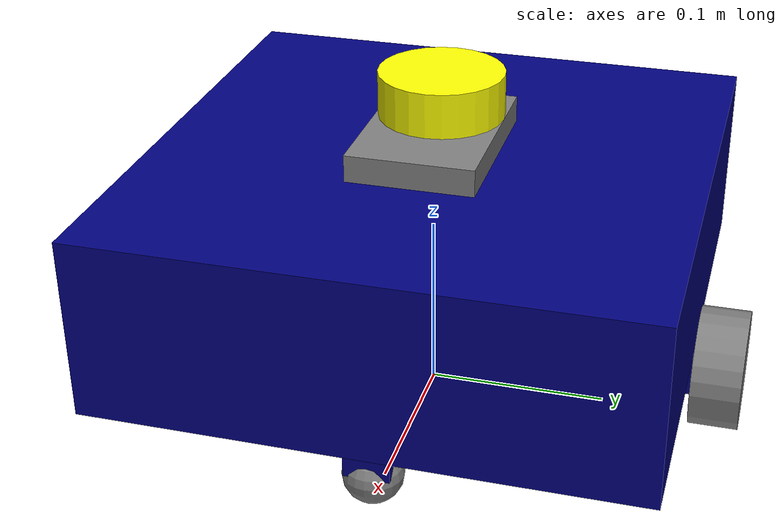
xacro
<?xml version="1.0"?>
<!-- Basic differential drive mobile base -->
<robot xmlns:xacro="http://www.ros.org/wiki/xacro" name="mybot">
  <xacro:arg name="prefix" default="" />

  <xacro:include filename="$(find mybot_control)/urdf/mybot_description.urdf.xacro" />

  <!-- Import Rviz colors -->
  <xacro:include filename="$(find mybot_control)/urdf/common_properties.xacro" />

  <!-- Import diffbot ros2_control description -->
  <xacro:include filename="$(find mybot_control)/ros2_control/mybot_ros2_control.xacro" />

  <xacro:mybot prefix="$(arg prefix)" />

  <xacro:mybot_ros2_control
    name="MyBot" prefix="$(arg prefix)" />

</robot>

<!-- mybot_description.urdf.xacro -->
<robot xmlns:xacro="http://www.ros.org/wiki/xacro">

  <xacro:macro name="mybot" params="prefix">

  <!-- Constants for robot dimensions -->
    <xacro:property name="base_length" value="0.3" />
    <xacro:property name="base_width" value="0.3" />
    <xacro:property name="base_height" value="0.1" />

    <xacro:property name="engine_length" value="0.025" />
    <xacro:property name="engine_width" value="0.05" />
    <xacro:property name="engine_height" value="0.025" />

    <xacro:property name="caster_base_length" value="0.025" />
    <xacro:property name="caster_base_width" value="0.025" />
    <xacro:property name="caster_base_height" value="0.025" />

    <xacro:property name="lidar_base_length" value="0.1" />
    <xacro:property name="lidar_base_width" value="0.07" />
    <xacro:property name="lidar_base_height" value="0.03" />

    <xacro:property name="lidar_radius" value="0.035" />
    <xacro:property name="lidar_length" value="0.025" />

    <xacro:property name="wheel_radius" value="0.033" />
    <xacro:property name="wheel_length" value="0.027" />

    <link name="${prefix}base_footprint" />

    <link name="${prefix}base_link">
        <visual>
            <geometry>
                <box size="${base_length} ${base_width} ${base_height}" />
            </geometry>
            <origin xyz="0 0 ${base_height / 2.0}" rpy="0 0 0" />
            <material name="blue" />
        </visual>
        <collision>
            <geometry>
                <box size="${base_length} ${base_width} ${base_height}" />
            </geometry>
            <origin xyz="0 0 ${base_height / 2.0}" rpy="0 0 0" />
        </collision>
        <xacro:box_inertia m="5.0" l="${2*base_length}" w="${2*base_width}" h="${2*base_height}"
                           xyz="0 0 ${base_height / 2.0}" rpy="0 0 0" />
    </link>

    <link name="${prefix}caster_base_front_link">
        <visual>
            <geometry>
                <box size="${caster_base_length} ${caster_base_width} ${caster_base_height}" />
            </geometry>
            <origin xyz="0 0 0" rpy="0 0 0" />
            <material name="blue" />
        </visual>
        <collision>
            <geometry>
                <box size="${caster_base_length} ${caster_base_width} ${caster_base_height}" />
            </geometry>
            <origin xyz="0 0 0" rpy="0 0 0" />
        </collision>
        <xacro:box_inertia m="5.0" l="${2*caster_base_length}" w="${2*caster_base_width}" h="${2*caster_base_height}"
                           xyz="0 0 ${caster_base_height / 2.0}" rpy="0 0 0" />
    </link>

    <link name="${prefix}caster_base_back_link">
        <visual>
            <geometry>
                <box size="${caster_base_length} ${caster_base_width} ${caster_base_height}" />
            </geometry>
            <origin xyz="0 0 0" rpy="0 0 0" />
            <material name="blue" />
        </visual>
        <collision>
            <geometry>
                <box size="${caster_base_length} ${caster_base_width} ${caster_base_height}" />
            </geometry>
            <origin xyz="0 0 0" rpy="0 0 0" />
        </collision>
        <xacro:box_inertia m="5.0" l="${2*caster_base_length}" w="${2*caster_base_width}" h="${2*caster_base_height}"
                           xyz="0 0 ${caster_base_height / 2.0}" rpy="0 0 0" />
    </link>

    <link name="${prefix}left_engine_link">
        <visual>
            <geometry>
                <box size="${engine_length} ${engine_width} ${engine_height}" />
            </geometry>
            <origin xyz="0 0 0" rpy="0 0 0" />
            <material name="blue" />
        </visual>
        <collision>
            <geometry>
                <box size="${engine_length} ${engine_width} ${engine_height}" />
            </geometry>
            <origin xyz="0 0 0" rpy="0 0 0" />
        </collision>
        <xacro:box_inertia m="5.0" l="${2*engine_length}" w="${2*engine_width}" h="${2*engine_height}"
                           xyz="0 0 ${engine_height / 2.0}" rpy="0 0 0" />
    </link>

    <link name="${prefix}right_engine_link">
        <visual>
            <geometry>
                <box size="${engine_length} ${engine_width} ${engine_height}" />
            </geometry>
            <origin xyz="0 0 0" rpy="0 0 0" />
            <material name="blue" />
        </visual>
        <collision>
            <geometry>
                <box size="${engine_length} ${engine_width} ${engine_height}" />
            </geometry>
            <origin xyz="0 0 0" rpy="0 0 0" />
        </collision>
        <xacro:box_inertia m="5.0" l="${2*engine_length}" w="${2*engine_width}" h="${2*engine_height}"
                           xyz="0 0 ${engine_height / 2.0}" rpy="0 0 0" />
    </link>

    <link name="${prefix}left_wheel_link">
        <visual>
            <geometry>
                <cylinder radius="${wheel_radius}" length="${wheel_length}" />
            </geometry>
            <origin xyz="0 0 0" rpy="${pi / 2.0} 0 0" />
            <material name="grey" />
        </visual>
        <collision>
            <geometry>
                <cylinder radius="${wheel_radius}" length="${wheel_length}" />
            </geometry>
            <origin xyz="0 0 0" rpy="${pi / 2.0} 0 0" />
        </collision>
        <xacro:cylinder_inertia m="1.0" r="${2*wheel_radius}" h="${2*wheel_length}"
                                xyz="0 0 0" rpy="${pi / 2.0} 0 0" />
    </link>

    <link name="${prefix}right_wheel_link">
        <visual>
            <geometry>
                <cylinder radius="${wheel_radius}" length="${wheel_length}" />
            </geometry>
            <origin xyz="0 0 0" rpy="${pi / 2.0} 0 0" />
            <material name="grey" />
        </visual>
        <collision>
            <geometry>
                <cylinder radius="${wheel_radius}" length="${wheel_length}" />
            </geometry>
            <origin xyz="0 0 0" rpy="${pi / 2.0} 0 0" />
        </collision>
        <xacro:cylinder_inertia m="1.0" r="${2*wheel_radius}" h="${2*wheel_length}"
                                xyz="0 0 0" rpy="${pi / 2.0} 0 0" />
    </link>

    <link name="${prefix}caster_wheel_front_link">
        <visual>
            <geometry>
                <sphere radius="${wheel_radius / 2.0}" />
            </geometry>
            <origin xyz="0 0 0" rpy="0 0 0" />
            <material name="grey" />
        </visual>
        <collision>
            <geometry>
                <sphere radius="${wheel_radius / 2.0}" />
            </geometry>
            <origin xyz="0 0 0" rpy="0 0 0" />
        </collision>
        <xacro:sphere_inertia m="0.5" r="${2*wheel_radius / 2.0}"
                              xyz="0 0 0" rpy="0 0 0" />
    </link>

      <link name="${prefix}caster_wheel_back_link">
        <visual>
            <geometry>
                <sphere radius="${wheel_radius / 2.0}" />
            </geometry>
            <origin xyz="0 0 0" rpy="0 0 0" />
            <material name="grey" />
        </visual>
        <collision>
            <geometry>
                <sphere radius="${wheel_radius / 2.0}" />
            </geometry>
            <origin xyz="0 0 0" rpy="0 0 0" />
        </collision>
        <xacro:sphere_inertia m="0.5" r="${2*wheel_radius / 2.0}"
                              xyz="0 0 0" rpy="0 0 0" />
    </link>

    <link name="${prefix}lidar_base_link">
        <visual>
            <geometry>
                <box size="${lidar_base_length} ${lidar_base_width} ${lidar_base_height}" />
            </geometry>
            <origin xyz="0 0 0" rpy="0 0 0" />
            <material name="grey" />
        </visual>
        <collision>
            <geometry>
                <box size="${lidar_base_length} ${lidar_base_width} ${lidar_base_height}" />
            </geometry>
            <origin xyz="0 0 0" rpy="0 0 0" />
        </collision>
        <xacro:box_inertia m="5.0" l="${2*lidar_base_length}" w="${2*lidar_base_width}" h="${2*lidar_base_height}"
                           xyz="0 0 ${lidar_base_height / 2.0}" rpy="0 0 0" />
    </link>

    <link name="${prefix}lidar_link">
        <visual>
            <geometry>
                <cylinder radius="${lidar_radius}" length="${lidar_length}" />
            </geometry>
            <origin xyz="0 0 ${lidar_length / 2.0}" rpy="0 0 0" />
            <material name="yellow" />
        </visual>
        <collision>
            <geometry>
                <cylinder radius="${lidar_radius}" length="${lidar_length}" />
            </geometry>
            <origin xyz="0 0 ${lidar_length / 2.0}" rpy="0 0 0" />
        </collision>
        <xacro:cylinder_inertia m="0.3" r="${2*lidar_radius}" h="${2*lidar_length}"
                                xyz="0 0 ${lidar_length / 2.0}" rpy="0 0 0" />
    </link>

    <joint name="${prefix}base_joint" type="fixed">
        <parent link="${prefix}base_footprint" />
        <child link="${prefix}base_link" />
        <origin xyz="0 0 ${wheel_radius + (engine_height / 2.0)}" rpy="0 0 0"/>
    </joint>

    <joint name="${prefix}base_right_engine_joint" type="fixed">
        <parent link="${prefix}base_link" />
        <child link="${prefix}right_engine_link" />
        <origin xyz="0 ${-(base_width - engine_width) / 2.0} ${-(engine_height) / 2.0}" rpy="0 0 0"/>
    </joint>

    <joint name="${prefix}base_left_engine_joint" type="fixed">
        <parent link="${prefix}base_link" />
        <child link="${prefix}left_engine_link" />
        <origin xyz="0 ${(base_width - engine_width) / 2.0} ${-(engine_height) / 2.0}" rpy="0 0 0"/>
    </joint>

    <joint name="${prefix}base_caster_base_front_joint" type="fixed">
        <parent link="${prefix}base_link" />
        <child link="${prefix}caster_base_front_link" />
        <origin xyz="${base_length / 2.5} 0 ${-(caster_base_height) / 2.0}" rpy="0 0 0"/>
    </joint>

    <joint name="${prefix}base_caster_base_back_joint" type="fixed">
        <parent link="${prefix}base_link" />
        <child link="${prefix}caster_base_back_link" />
        <origin xyz="${-base_length / 2.5} 0 ${-(caster_base_height) / 2.0}" rpy="0 0 0"/>
    </joint>

    <joint name="${prefix}right_engine_right_wheel_joint" type="continuous">
        <parent link="${prefix}right_engine_link" />
        <child link="${prefix}right_wheel_link" />
        <origin xyz="0 ${-(wheel_length + (engine_height / 2.0))} 0" rpy="0 0 0" />
        <axis xyz="0 1 0" />
    </joint>

    <joint name="${prefix}left_engine_left_wheel_joint" type="continuous">
        <parent link="${prefix}left_engine_link" />
        <child link="${prefix}left_wheel_link" />
        <origin xyz="0 ${(wheel_length + (engine_height / 2.0))} 0" rpy="0 0 0" />
        <axis xyz="0 1 0" />
    </joint>

    <joint name="${prefix}caster_base_caster_wheel_front_joint" type="fixed">
        <parent link="${prefix}caster_base_front_link" />
        <child link="${prefix}caster_wheel_front_link" />
        <origin xyz="0 0 ${-wheel_radius / 2.0}" rpy="0 0 0" />
    </joint>

    <joint name="${prefix}caster_base_caster_wheel_back_joint" type="fixed">
        <parent link="${prefix}caster_base_back_link" />
        <child link="${prefix}caster_wheel_back_link" />
        <origin xyz="0 0 ${-wheel_radius / 2.0}" rpy="0 0 0" />
    </joint>

    <joint name="${prefix}base_lidar_base_joint" type="fixed">
        <parent link="${prefix}base_link" />
        <child link="${prefix}lidar_base_link" />
        <origin xyz="0 0 ${base_height}" rpy="0 0 0" />
    </joint>

    <joint name="${prefix}lidar_base__lidar_joint" type="fixed">
        <parent link="${prefix}lidar_base_link" />
        <child link="${prefix}lidar_link" />
        <origin xyz="${-lidar_base_length / 6.0} 0 ${lidar_base_height / 2.0}" rpy="0 0 0" />
    </joint>

  </xacro:macro>

</robot>

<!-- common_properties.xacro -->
<robot xmlns:xacro="http://www.ros.org/wiki/xacro">

    <material name="blue">
        <color rgba="0 0 0.5 1" />
    </material>

    <material name="grey">
        <color rgba="0.5 0.5 0.5 1" />
    </material>

    <material name="orange">
        <color rgba="1.0 0.5 0 1" />
    </material>

    <material name="yellow">
        <color rgba="1.0 1.0 0 1" />
    </material>

    <xacro:macro name="box_inertia" params="m l w h xyz rpy">
        <inertial>
            <origin xyz="${xyz}" rpy="${rpy}" />
            <mass value="${m}" />
            <inertia ixx="${(m/12) * (h*h + l*l)}" ixy="0" ixz="0"
                     iyy="${(m/12) * (w*w + l*l)}" iyz="0"
                     izz="${(m/12) * (w*w + h*h)}" />
        </inertial>
    </xacro:macro>

    <xacro:macro name="cylinder_inertia" params="m r h xyz rpy">
        <inertial>
            <origin xyz="${xyz}" rpy="${rpy}" />
            <mass value="${m}" />
            <inertia ixx="${(m/12) * (3*r*r + h*h)}" ixy="0" ixz="0"
                     iyy="${(m/12) * (3*r*r + h*h)}" iyz="0"
                     izz="${(m/2) * (r*r)}" />
        </inertial>
    </xacro:macro>

    <xacro:macro name="sphere_inertia" params="m r xyz rpy">
        <inertial>
            <origin xyz="${xyz}" rpy="${rpy}" />
            <mass value="${m}" />
            <inertia ixx="${(2/5) * m * r * r}" ixy="0" ixz="0"
                     iyy="${(2/5) * m * r * r}" iyz="0"
                     izz="${(2/5) * m * r * r}" />
        </inertial>
    </xacro:macro>

</robot>
